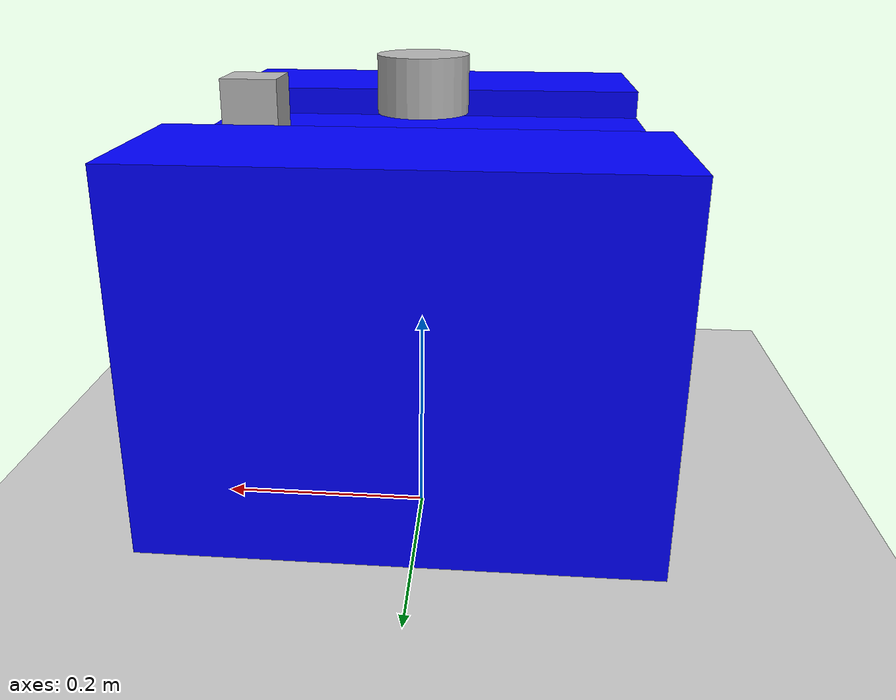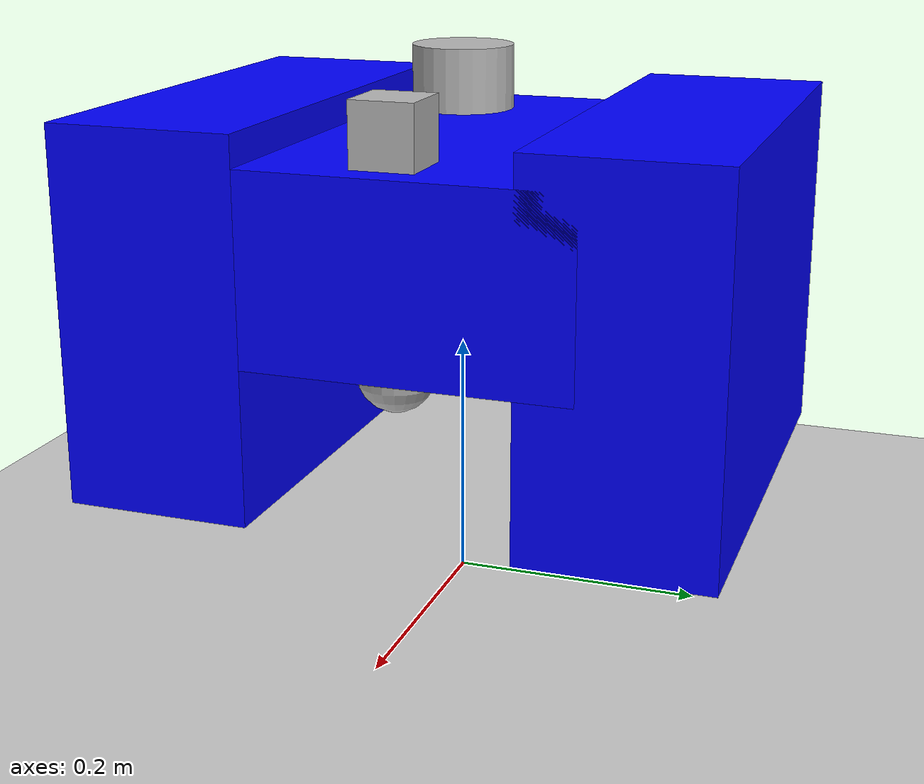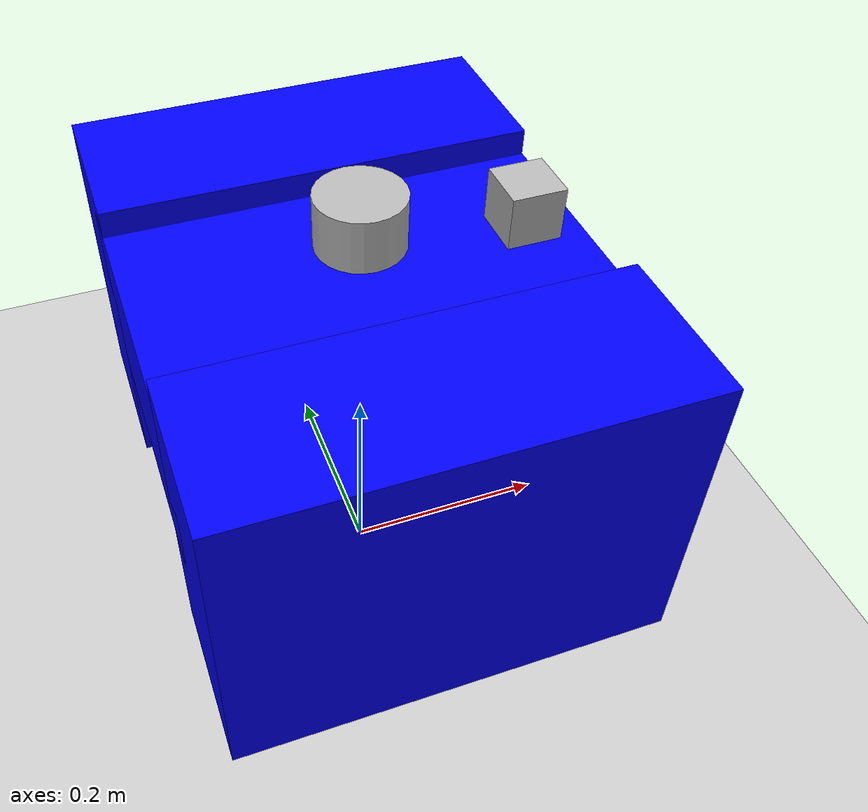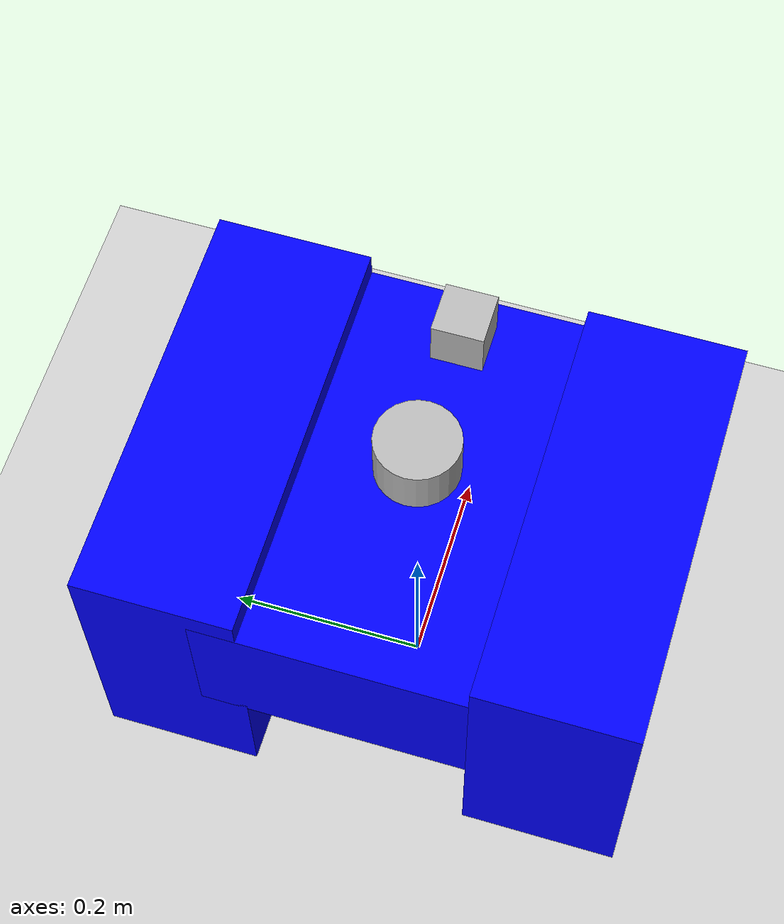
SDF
<?xml version="1.0"?>
<sdf version="1.8">
  <world name="fire_world">
<scene>
  <ambient>1 1 1 1</ambient>
  <background>1 1 1 1</background>
</scene>
    <model name="ground_plane">
      <static>true</static>

      <link name="link">
        <collision name="collision">
          <geometry>
            <plane>
              <normal>0 0 1</normal>
              <size>100 100</size>
            </plane>
          </geometry>
        </collision>

        <visual name="visual">
          <geometry>
            <plane>
              <normal>0 0 1</normal>
              <size>100 100</size>
            </plane>
          </geometry>
        </visual>
      </link>
    </model>

    <include>
      <uri>model://firebot</uri>
      <pose>0 0 0.3 0 0 0</pose>
    </include>

  </world>
</sdf>

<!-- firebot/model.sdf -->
<sdf version="1.8">
  <model name="firebot">

    <link name="base_link">

      <visual name="visual">
  <geometry>
    <box>
      <size>0.4 0.3 0.15</size>
    </box>
  </geometry>

  <material>
    <ambient>0 0 1 1</ambient>
    <diffuse>0 0 1 1</diffuse>
  </material>
</visual>

      <collision name="collision">
        <geometry>
          <box>
            <size>0.4 0.3 0.15</size>
          </box>
        </geometry>
      </collision>
<inertial>
  <mass>5.0</mass>

  <inertia>
    <ixx>0.1</ixx>
    <iyy>0.1</iyy>
    <izz>0.1</izz>
    <ixy>0.0</ixy>
    <ixz>0.0</ixz>
    <iyz>0.0</iyz>
  </inertia>
</inertial>

    </link>
<link name="left_wheel">
  <pose>0 0.18 -0.05 1.5708 0 0</pose>

  <visual name="visual">
  <geometry>
    <box>
      <size>0.4 0.3 0.15</size>
    </box>
  </geometry>

  <material>
    <ambient>0 0 1 1</ambient>
    <diffuse>0 0 1 1</diffuse>
  </material>
</visual>

  <collision name="collision">
    <geometry>
      <cylinder>
        <radius>0.05</radius>
        <length>0.03</length>
      </cylinder>
    </geometry>
  </collision>
<inertial>
  <mass>0.5</mass>

  <inertia>
    <ixx>0.001</ixx>
    <iyy>0.001</iyy>
    <izz>0.001</izz>
    <ixy>0.0</ixy>
    <ixz>0.0</ixz>
    <iyz>0.0</iyz>
  </inertia>
</inertial>
</link>
<joint name="left_wheel_joint" type="revolute">
  <parent>base_link</parent>
  <child>left_wheel</child>

    <axis>
  <xyz>0 1 0</xyz>

  <limit>
    <effort>10</effort>
    <velocity>20</velocity>
  </limit>
</axis>
</joint>
<link name="right_wheel">
  <pose>0 -0.18 -0.05 1.5708 0 0</pose>

  <visual name="visual">
  <geometry>
    <box>
      <size>0.4 0.3 0.15</size>
    </box>
  </geometry>

  <material>
    <ambient>0 0 1 1</ambient>
    <diffuse>0 0 1 1</diffuse>
  </material>
</visual>

  <collision name="collision">
    <geometry>
      <cylinder>
        <radius>0.05</radius>
        <length>0.03</length>
      </cylinder>
    </geometry>
  </collision>
<inertial>
  <mass>0.5</mass>

  <inertia>
    <ixx>0.001</ixx>
    <iyy>0.001</iyy>
    <izz>0.001</izz>
    <ixy>0.0</ixy>
    <ixz>0.0</ixz>
    <iyz>0.0</iyz>
  </inertia>
</inertial>
</link>
<joint name="right_wheel_joint" type="revolute">
  <parent>base_link</parent>
  <child>right_wheel</child>
    <axis>
  <xyz>0 1 0</xyz>

  <limit>
    <effort>10</effort>
    <velocity>20</velocity>
  </limit>
</axis>
</joint>
<link name="caster_wheel">
  <pose>0.15 0 -0.08 0 0 0</pose>

  <visual name="visual">
    <geometry>
      <sphere>
        <radius>0.03</radius>
      </sphere>
    </geometry>
  </visual>

  <collision name="collision">
    <geometry>
      <sphere>
        <radius>0.03</radius>
      </sphere>
    </geometry>
  </collision>
</link>
<joint name="caster_wheel_joint" type="fixed">
  <parent>base_link</parent>
  <child>caster_wheel</child>
</joint>
<link name="lidar_link">
<sensor name="lidar_sensor" type="gpu_lidar">
  <update_rate>10</update_rate>

  <topic>scan</topic>

  <lidar>
    <scan>
      <horizontal>
        <samples>360</samples>
        <resolution>1</resolution>
        <min_angle>-3.14159</min_angle>
        <max_angle>3.14159</max_angle>
      </horizontal>
    </scan>

    <range>
      <min>0.1</min>
      <max>10.0</max>
      <resolution>0.01</resolution>
    </range>
  </lidar>

  <always_on>true</always_on>
  <visualize>true</visualize>
</sensor>
  <pose>0 0 0.12 0 0 0</pose>

  <visual name="visual">
    <geometry>
      <cylinder>
        <radius>0.04</radius>
        <length>0.05</length>
      </cylinder>
    </geometry>
  </visual>

  <collision name="collision">
    <geometry>
      <cylinder>
        <radius>0.04</radius>
        <length>0.05</length>
      </cylinder>
    </geometry>
  </collision>
<inertial>
  <mass>0.1</mass>

  <inertia>
    <ixx>0.0001</ixx>
    <iyy>0.0001</iyy>
    <izz>0.0001</izz>
    <ixy>0.0</ixy>
    <ixz>0.0</ixz>
    <iyz>0.0</iyz>
  </inertia>
</inertial>
</link>
<joint name="lidar_joint" type="fixed">
  <parent>base_link</parent>
  <child>lidar_link</child>
</joint>
<link name="camera_link">
  <pose>0.15 0 0.10 0 0 0</pose>

  <visual name="visual">
    <geometry>
      <box>
        <size>0.05 0.05 0.05</size>
      </box>
    </geometry>
  </visual>

  <collision name="collision">
    <geometry>
      <box>
        <size>0.05 0.05 0.05</size>
      </box>
    </geometry>
  </collision>
</link>
<joint name="camera_joint" type="fixed">
  <parent>base_link</parent>
  <child>camera_link</child>
</joint>
<plugin
    filename="gz-sim-diff-drive-system"
    name="gz::sim::systems::DiffDrive">

  <left_joint>left_wheel_joint</left_joint>
  <right_joint>right_wheel_joint</right_joint>

  <wheel_separation>0.36</wheel_separation>
  <wheel_radius>0.05</wheel_radius>

  <topic>cmd_vel</topic>

</plugin>
  </model>
</sdf>
